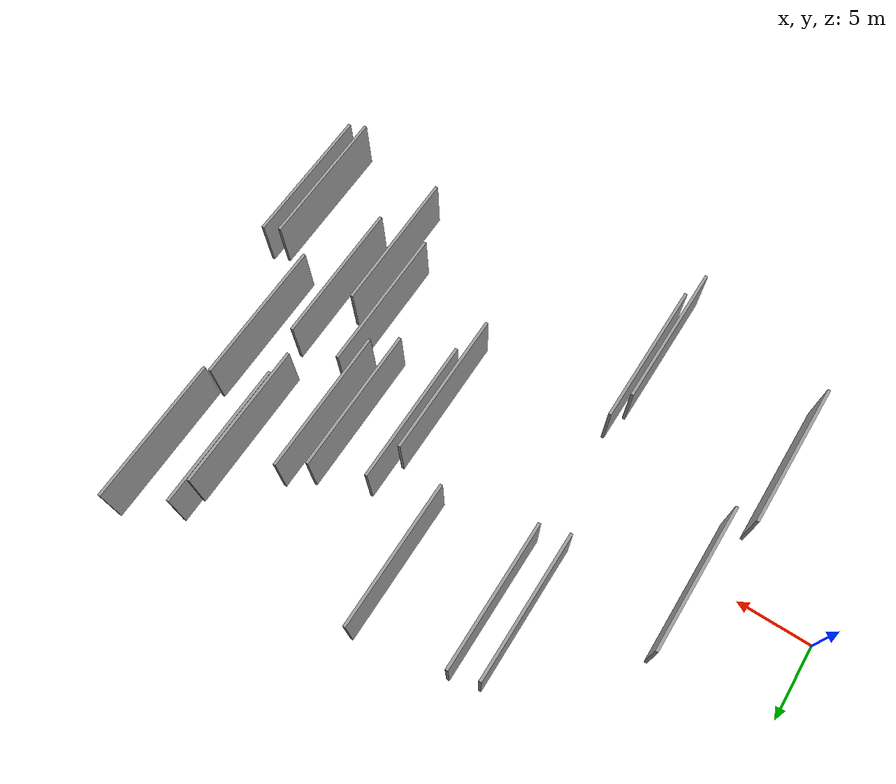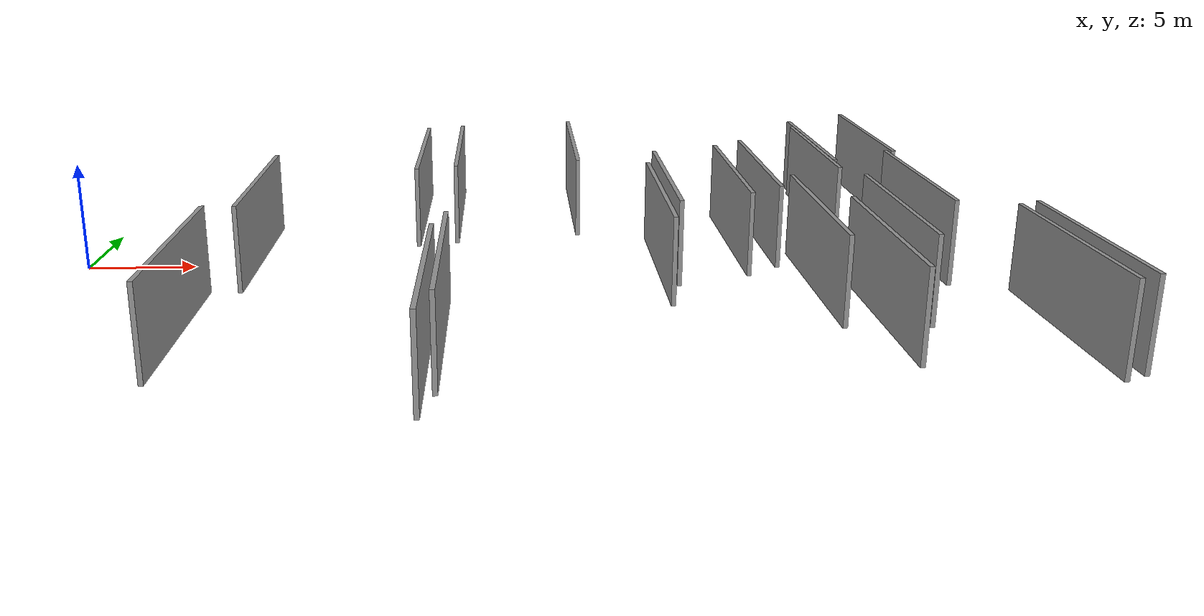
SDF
<sdf version="1.6">
 <world name="default">
  <scene>
   <sky><clouds><speed>12</speed></clouds></sky>
   <ambient>0.4 0.4 0.4 1</ambient>
   <background>0.7 0.7 0.7 1</background>
   <shadows>1</shadows>
  </scene>
  <gravity>0 0 -9.8066</gravity>
  <magnetic_field>6e-06 2.3e-05 -4.2e-05</magnetic_field>
  <physics default="0" name="default_physics" type="ode">
   <ode>
    <solver>
     <type>quick</type>
     <iters>10</iters>
     <sor>1.0</sor>
     <use_dynamic_moi_rescaling>0</use_dynamic_moi_rescaling>
    </solver>
    <constraints>
     <cfm>0</cfm>
     <erp>0.2</erp>
     <contact_max_correcting_vel>100</contact_max_correcting_vel>
     <contact_surface_layer>0.001</contact_surface_layer>
    </constraints>
   </ode>
   <max_step_size>0.004</max_step_size>
   <real_time_factor>1</real_time_factor>
   <real_time_update_rate>250</real_time_update_rate>
  </physics>
  <light name="sun" type="directional">
   <pose>0 0 10 0 0 0</pose>
   <diffuse>0.8 0.8 0.8 1</diffuse>
   <specular>0.2 0.2 0.2 1</specular>
   <attenuation>
    <range>1000</range>
    <constant>0.9</constant>
    <linear>0.01</linear>
    <quadratic>0.001</quadratic>
   </attenuation>
   <direction>-0.5 0.1 -0.9</direction>
  </light>
  <model name="grey_wall_1">
   <static>1</static>
   <pose>23.4221 9.4589 0.0 0.000000 0.000000 1.570796</pose>
   <link name="link">
    <pose>0 0 2.00 0 0 0</pose>
    <collision name="collision"><geometry><box><size>10.00 0.2 4.00</size></box></geometry></collision>
    <visual name="visual">
     <cast_shadows>0</cast_shadows>
     <geometry><box><size>10.00 0.2 4.00</size></box></geometry>
     <material>
      <script>
       <uri>model://grey_wall/materials/scripts</uri>
       <uri>model://grey_wall/materials/textures</uri>
       <name>vrc/grey_wall</name>
      </script>
     </material>
    </visual>
   </link>
  </model>
  <model name="grey_wall_2">
   <static>1</static>
   <pose>32.5630 3.8398 0.0 0.000000 0.000000 1.570796</pose>
   <link name="link">
    <pose>0 0 2.00 0 0 0</pose>
    <collision name="collision"><geometry><box><size>10.00 0.2 4.00</size></box></geometry></collision>
    <visual name="visual">
     <cast_shadows>0</cast_shadows>
     <geometry><box><size>10.00 0.2 4.00</size></box></geometry>
     <material>
      <script>
       <uri>model://grey_wall/materials/scripts</uri>
       <uri>model://grey_wall/materials/textures</uri>
       <name>vrc/grey_wall</name>
      </script>
     </material>
    </visual>
   </link>
  </model>
  <model name="grey_wall_3">
   <static>1</static>
   <pose>36.3139 7.4052 0.0 0.000000 0.000000 1.570796</pose>
   <link name="link">
    <pose>0 0 2.00 0 0 0</pose>
    <collision name="collision"><geometry><box><size>10.00 0.2 4.00</size></box></geometry></collision>
    <visual name="visual">
     <cast_shadows>0</cast_shadows>
     <geometry><box><size>10.00 0.2 4.00</size></box></geometry>
     <material>
      <script>
       <uri>model://grey_wall/materials/scripts</uri>
       <uri>model://grey_wall/materials/textures</uri>
       <name>vrc/grey_wall</name>
      </script>
     </material>
    </visual>
   </link>
  </model>
  <model name="grey_wall_4">
   <static>1</static>
   <pose>16.6727 -11.7709 0.0 0.000000 0.000000 1.570796</pose>
   <link name="link">
    <pose>0 0 2.00 0 0 0</pose>
    <collision name="collision"><geometry><box><size>10.00 0.2 4.00</size></box></geometry></collision>
    <visual name="visual">
     <cast_shadows>0</cast_shadows>
     <geometry><box><size>10.00 0.2 4.00</size></box></geometry>
     <material>
      <script>
       <uri>model://grey_wall/materials/scripts</uri>
       <uri>model://grey_wall/materials/textures</uri>
       <name>vrc/grey_wall</name>
      </script>
     </material>
    </visual>
   </link>
  </model>
  <model name="grey_wall_5">
   <static>1</static>
   <pose>42.3125 -9.6594 0.0 0.000000 0.000000 1.570796</pose>
   <link name="link">
    <pose>0 0 2.00 0 0 0</pose>
    <collision name="collision"><geometry><box><size>10.00 0.2 4.00</size></box></geometry></collision>
    <visual name="visual">
     <cast_shadows>0</cast_shadows>
     <geometry><box><size>10.00 0.2 4.00</size></box></geometry>
     <material>
      <script>
       <uri>model://grey_wall/materials/scripts</uri>
       <uri>model://grey_wall/materials/textures</uri>
       <name>vrc/grey_wall</name>
      </script>
     </material>
    </visual>
   </link>
  </model>
  <model name="grey_wall_6">
   <static>1</static>
   <pose>40.1657 10.9871 0.0 0.000000 0.000000 1.570796</pose>
   <link name="link">
    <pose>0 0 2.00 0 0 0</pose>
    <collision name="collision"><geometry><box><size>10.00 0.2 4.00</size></box></geometry></collision>
    <visual name="visual">
     <cast_shadows>0</cast_shadows>
     <geometry><box><size>10.00 0.2 4.00</size></box></geometry>
     <material>
      <script>
       <uri>model://grey_wall/materials/scripts</uri>
       <uri>model://grey_wall/materials/textures</uri>
       <name>vrc/grey_wall</name>
      </script>
     </material>
    </visual>
   </link>
  </model>
  <model name="grey_wall_7">
   <static>1</static>
   <pose>26.9151 -1.1675 0.0 0.000000 0.000000 1.570796</pose>
   <link name="link">
    <pose>0 0 2.00 0 0 0</pose>
    <collision name="collision"><geometry><box><size>10.00 0.2 4.00</size></box></geometry></collision>
    <visual name="visual">
     <cast_shadows>0</cast_shadows>
     <geometry><box><size>10.00 0.2 4.00</size></box></geometry>
     <material>
      <script>
       <uri>model://grey_wall/materials/scripts</uri>
       <uri>model://grey_wall/materials/textures</uri>
       <name>vrc/grey_wall</name>
      </script>
     </material>
    </visual>
   </link>
  </model>
  <model name="grey_wall_8">
   <static>1</static>
   <pose>17.1875 -9.8897 0.0 0.000000 0.000000 1.570796</pose>
   <link name="link">
    <pose>0 0 2.00 0 0 0</pose>
    <collision name="collision"><geometry><box><size>10.00 0.2 4.00</size></box></geometry></collision>
    <visual name="visual">
     <cast_shadows>0</cast_shadows>
     <geometry><box><size>10.00 0.2 4.00</size></box></geometry>
     <material>
      <script>
       <uri>model://grey_wall/materials/scripts</uri>
       <uri>model://grey_wall/materials/textures</uri>
       <name>vrc/grey_wall</name>
      </script>
     </material>
    </visual>
   </link>
  </model>
  <model name="grey_wall_9">
   <static>1</static>
   <pose>17.2578 8.3509 0.0 0.000000 0.000000 1.570796</pose>
   <link name="link">
    <pose>0 0 2.00 0 0 0</pose>
    <collision name="collision"><geometry><box><size>10.00 0.2 4.00</size></box></geometry></collision>
    <visual name="visual">
     <cast_shadows>0</cast_shadows>
     <geometry><box><size>10.00 0.2 4.00</size></box></geometry>
     <material>
      <script>
       <uri>model://grey_wall/materials/scripts</uri>
       <uri>model://grey_wall/materials/textures</uri>
       <name>vrc/grey_wall</name>
      </script>
     </material>
    </visual>
   </link>
  </model>
  <model name="grey_wall_10">
   <static>1</static>
   <pose>6.5091 -8.6420 0.0 0.000000 0.000000 1.570796</pose>
   <link name="link">
    <pose>0 0 2.00 0 0 0</pose>
    <collision name="collision"><geometry><box><size>10.00 0.2 4.00</size></box></geometry></collision>
    <visual name="visual">
     <cast_shadows>0</cast_shadows>
     <geometry><box><size>10.00 0.2 4.00</size></box></geometry>
     <material>
      <script>
       <uri>model://grey_wall/materials/scripts</uri>
       <uri>model://grey_wall/materials/textures</uri>
       <name>vrc/grey_wall</name>
      </script>
     </material>
    </visual>
   </link>
  </model>
  <model name="grey_wall_11">
   <static>1</static>
   <pose>15.3530 7.8726 0.0 0.000000 0.000000 1.570796</pose>
   <link name="link">
    <pose>0 0 2.00 0 0 0</pose>
    <collision name="collision"><geometry><box><size>10.00 0.2 4.00</size></box></geometry></collision>
    <visual name="visual">
     <cast_shadows>0</cast_shadows>
     <geometry><box><size>10.00 0.2 4.00</size></box></geometry>
     <material>
      <script>
       <uri>model://grey_wall/materials/scripts</uri>
       <uri>model://grey_wall/materials/textures</uri>
       <name>vrc/grey_wall</name>
      </script>
     </material>
    </visual>
   </link>
  </model>
  <model name="grey_wall_12">
   <static>1</static>
   <pose>36.5261 9.0581 0.0 0.000000 0.000000 1.570796</pose>
   <link name="link">
    <pose>0 0 2.00 0 0 0</pose>
    <collision name="collision"><geometry><box><size>10.00 0.2 4.00</size></box></geometry></collision>
    <visual name="visual">
     <cast_shadows>0</cast_shadows>
     <geometry><box><size>10.00 0.2 4.00</size></box></geometry>
     <material>
      <script>
       <uri>model://grey_wall/materials/scripts</uri>
       <uri>model://grey_wall/materials/textures</uri>
       <name>vrc/grey_wall</name>
      </script>
     </material>
    </visual>
   </link>
  </model>
  <model name="grey_wall_13">
   <static>1</static>
   <pose>27.5452 1.4275 0.0 0.000000 0.000000 1.570796</pose>
   <link name="link">
    <pose>0 0 2.00 0 0 0</pose>
    <collision name="collision"><geometry><box><size>10.00 0.2 4.00</size></box></geometry></collision>
    <visual name="visual">
     <cast_shadows>0</cast_shadows>
     <geometry><box><size>10.00 0.2 4.00</size></box></geometry>
     <material>
      <script>
       <uri>model://grey_wall/materials/scripts</uri>
       <uri>model://grey_wall/materials/textures</uri>
       <name>vrc/grey_wall</name>
      </script>
     </material>
    </visual>
   </link>
  </model>
  <model name="grey_wall_14">
   <static>1</static>
   <pose>33.5602 -4.0290 0.0 0.000000 0.000000 1.570796</pose>
   <link name="link">
    <pose>0 0 2.00 0 0 0</pose>
    <collision name="collision"><geometry><box><size>10.00 0.2 4.00</size></box></geometry></collision>
    <visual name="visual">
     <cast_shadows>0</cast_shadows>
     <geometry><box><size>10.00 0.2 4.00</size></box></geometry>
     <material>
      <script>
       <uri>model://grey_wall/materials/scripts</uri>
       <uri>model://grey_wall/materials/textures</uri>
       <name>vrc/grey_wall</name>
      </script>
     </material>
    </visual>
   </link>
  </model>
  <model name="grey_wall_15">
   <static>1</static>
   <pose>43.3201 -9.1807 0.0 0.000000 0.000000 1.570796</pose>
   <link name="link">
    <pose>0 0 2.00 0 0 0</pose>
    <collision name="collision"><geometry><box><size>10.00 0.2 4.00</size></box></geometry></collision>
    <visual name="visual">
     <cast_shadows>0</cast_shadows>
     <geometry><box><size>10.00 0.2 4.00</size></box></geometry>
     <material>
      <script>
       <uri>model://grey_wall/materials/scripts</uri>
       <uri>model://grey_wall/materials/textures</uri>
       <name>vrc/grey_wall</name>
      </script>
     </material>
    </visual>
   </link>
  </model>
  <model name="grey_wall_16">
   <static>1</static>
   <pose>37.1514 -4.0819 0.0 0.000000 0.000000 1.570796</pose>
   <link name="link">
    <pose>0 0 2.00 0 0 0</pose>
    <collision name="collision"><geometry><box><size>10.00 0.2 4.00</size></box></geometry></collision>
    <visual name="visual">
     <cast_shadows>0</cast_shadows>
     <geometry><box><size>10.00 0.2 4.00</size></box></geometry>
     <material>
      <script>
       <uri>model://grey_wall/materials/scripts</uri>
       <uri>model://grey_wall/materials/textures</uri>
       <name>vrc/grey_wall</name>
      </script>
     </material>
    </visual>
   </link>
  </model>
  <model name="grey_wall_17">
   <static>1</static>
   <pose>7.9268 1.1882 0.0 0.000000 0.000000 1.570796</pose>
   <link name="link">
    <pose>0 0 2.00 0 0 0</pose>
    <collision name="collision"><geometry><box><size>10.00 0.2 4.00</size></box></geometry></collision>
    <visual name="visual">
     <cast_shadows>0</cast_shadows>
     <geometry><box><size>10.00 0.2 4.00</size></box></geometry>
     <material>
      <script>
       <uri>model://grey_wall/materials/scripts</uri>
       <uri>model://grey_wall/materials/textures</uri>
       <name>vrc/grey_wall</name>
      </script>
     </material>
    </visual>
   </link>
  </model>
  <model name="grey_wall_18">
   <static>1</static>
   <pose>30.9820 2.7147 0.0 0.000000 0.000000 1.570796</pose>
   <link name="link">
    <pose>0 0 2.00 0 0 0</pose>
    <collision name="collision"><geometry><box><size>10.00 0.2 4.00</size></box></geometry></collision>
    <visual name="visual">
     <cast_shadows>0</cast_shadows>
     <geometry><box><size>10.00 0.2 4.00</size></box></geometry>
     <material>
      <script>
       <uri>model://grey_wall/materials/scripts</uri>
       <uri>model://grey_wall/materials/textures</uri>
       <name>vrc/grey_wall</name>
      </script>
     </material>
    </visual>
   </link>
  </model>
  <model name="grey_wall_19">
   <static>1</static>
   <pose>35.3307 -8.0970 0.0 0.000000 0.000000 1.570796</pose>
   <link name="link">
    <pose>0 0 2.00 0 0 0</pose>
    <collision name="collision"><geometry><box><size>10.00 0.2 4.00</size></box></geometry></collision>
    <visual name="visual">
     <cast_shadows>0</cast_shadows>
     <geometry><box><size>10.00 0.2 4.00</size></box></geometry>
     <material>
      <script>
       <uri>model://grey_wall/materials/scripts</uri>
       <uri>model://grey_wall/materials/textures</uri>
       <name>vrc/grey_wall</name>
      </script>
     </material>
    </visual>
   </link>
  </model>
  <model name="grey_wall_20">
   <static>1</static>
   <pose>39.7499 1.0247 0.0 0.000000 0.000000 1.570796</pose>
   <link name="link">
    <pose>0 0 2.00 0 0 0</pose>
    <collision name="collision"><geometry><box><size>10.00 0.2 4.00</size></box></geometry></collision>
    <visual name="visual">
     <cast_shadows>0</cast_shadows>
     <geometry><box><size>10.00 0.2 4.00</size></box></geometry>
     <material>
      <script>
       <uri>model://grey_wall/materials/scripts</uri>
       <uri>model://grey_wall/materials/textures</uri>
       <name>vrc/grey_wall</name>
      </script>
     </material>
    </visual>
   </link>
  </model>
 </world>
</sdf>
